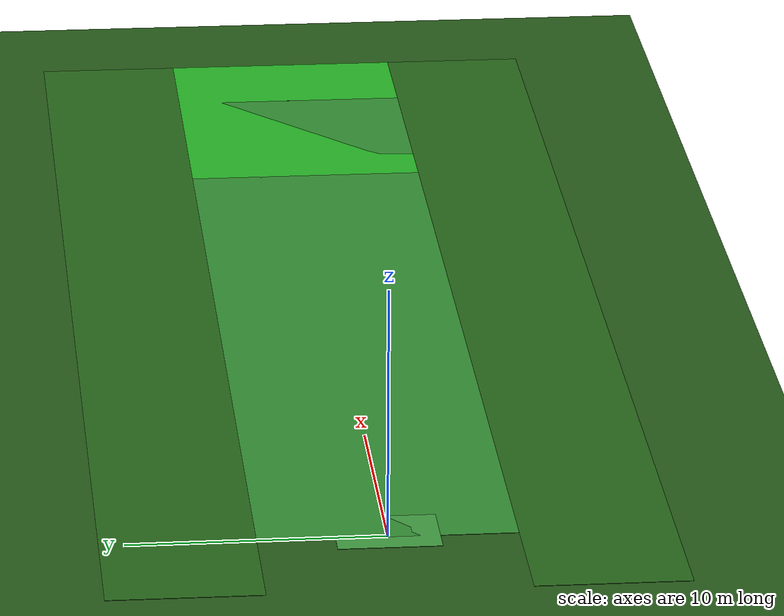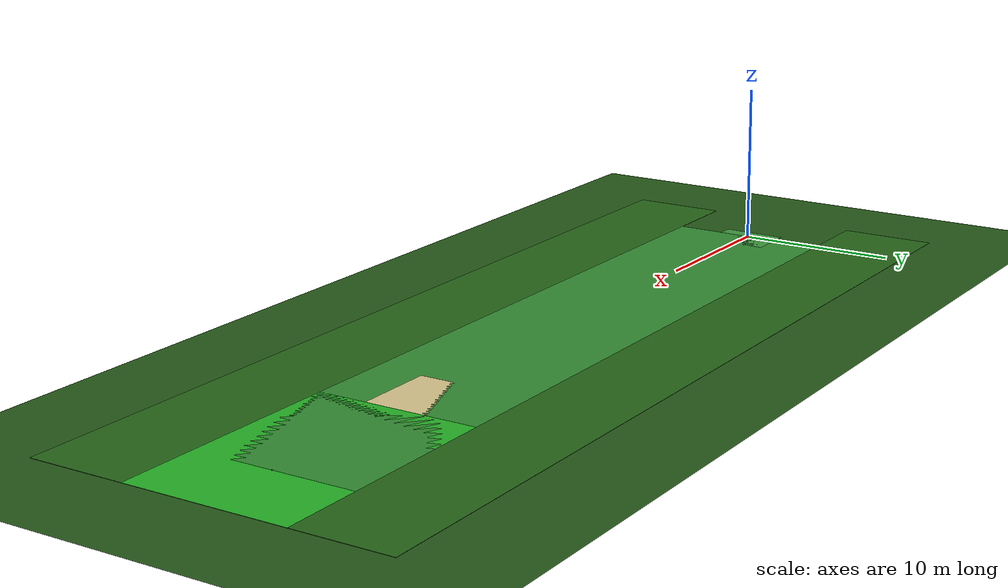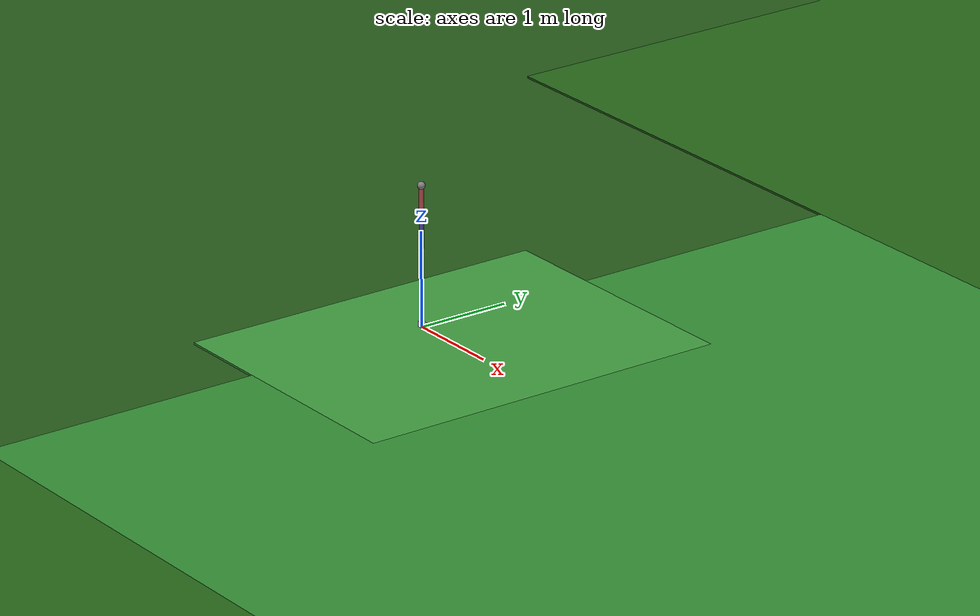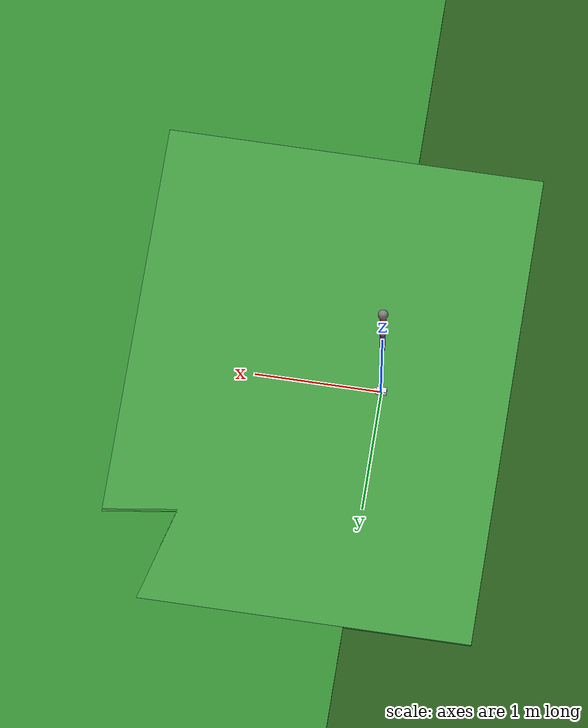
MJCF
<mujoco model="golf_swing">
  <option timestep="0.0005" gravity="0 0 -9.81" integrator="Euler">
    <flag contact="enable"/>
  </option>

  <default>
    <joint damping="0.5" armature="0.01"/>
    <geom condim="3" friction="0.8 0.005 0.0001"/>
  </default>

  <contact>
    <pair geom1="club_head" geom2="ball_geom"
          condim="3" friction="0.4 0.4 0.005"
          solref="0.0005 1.0" solimp="0.95 0.99 0.001"/>
  </contact>

  <worldbody>

    <!-- ============ TERRAIN ============ -->
    <geom name="tee_box" type="box" pos="0.5 0 -0.01" size="1.5 2 0.01"
          rgba="0.25 0.6 0.25 1" friction="0.4 0.005 0.0001"/>
    <geom name="fairway" type="box" pos="25 0 -0.01" size="25 5 0.01"
          rgba="0.2 0.55 0.2 1" friction="0.4 0.005 0.0001"/>
    <geom name="green" type="box" pos="47.5 0 -0.01" size="7.5 5 0.01"
          rgba="0.15 0.7 0.15 1" friction="0.15 0.002 0.00005"/>
    <geom name="sand" type="box" pos="37.5 0 -0.005" size="2.5 2 0.005"
          rgba="0.85 0.78 0.55 1" friction="1.2 0.05 0.001"/>
    <geom name="rough_left" type="box" pos="25 -8 -0.01" size="30 3 0.01"
          rgba="0.15 0.4 0.1 1" friction="0.8 0.02 0.0005"/>
    <geom name="rough_right" type="box" pos="25 8 -0.01" size="30 3 0.01"
          rgba="0.15 0.4 0.1 1" friction="0.8 0.02 0.0005"/>
    <geom name="ground" type="plane" size="100 100 0.1" pos="0 0 -0.02"
          rgba="0.15 0.35 0.1 1" friction="0.8 0.02 0.0005"/>

    <light pos="0 -2 3" dir="0 1 -1" diffuse="1 1 1"/>

    <!-- ============ 2-DOF ARM ============ -->
    <!-- Base directly above ball. Height = arm reach + margin -->
    <body name="base" pos="0 0 1.48">
      <geom type="sphere" size="0.04" rgba="0.5 0.5 0.5 1" mass="0"
            contype="0" conaffinity="0"/>

      <body name="upper_arm" pos="0 0 0">
        <joint name="elbow" type="hinge" axis="0 1 0"
               range="-270 270" limited="true"
               damping="2.0" armature="0.05"/>
        <geom type="capsule" fromto="0 0 0 0 0 -0.35"
              size="0.025" rgba="0.7 0.3 0.3 1" mass="2.0"
              contype="0" conaffinity="0"/>

        <body name="forearm" pos="0 0 -0.35">
          <joint name="wrist" type="hinge" axis="0 1 0"
                 range="-90 90" limited="true"
                 damping="30.0" armature="0.02"/>
          <geom type="capsule" fromto="0 0 0 0 0 -0.30"
                size="0.02" rgba="0.3 0.3 0.7 1" mass="1.5"
                contype="0" conaffinity="0"/>

          <body name="club_shaft" pos="0 0 -0.30">
            <geom type="capsule" fromto="0 0 0 0 0 -0.80"
                  size="0.008" rgba="0.8 0.8 0.8 1" mass="0.3"
                  contype="0" conaffinity="0"/>

            <body name="club_head_body" pos="0 0 -0.80">
              <geom name="club_head" type="box" size="0.04 0.02 0.03"
                    rgba="0.9 0.9 0.9 1" mass="0.2"/>
            </body>
          </body>
        </body>
      </body>
    </body>

    <!-- ============ GOLF BALL ============ -->
    <!-- Slightly ahead of base in +X so club sweeps into it -->
    <body name="ball" pos="0.05 0 0.0214">
      <freejoint name="ball_joint"/>
      <geom name="ball_geom" type="sphere" size="0.0214"
            rgba="1 1 1 1" mass="0.0459"
            friction="0.5 0.005 0.0001"/>
    </body>

    <!-- Hole — far in +X direction -->
    <body name="hole" pos="50.0 0 0.001">
      <geom type="cylinder" size="0.054 0.001"
            rgba="0.1 0.1 0.1 1" contype="0" conaffinity="0"/>
    </body>
  </worldbody>

  <actuator>
    <motor name="elbow_torque" joint="elbow" ctrlrange="-150 150" ctrllimited="true"/>
    <motor name="wrist_torque" joint="wrist" ctrlrange="-60 60" ctrllimited="true"/>
  </actuator>

  <sensor>
    <jointpos name="elbow_pos" joint="elbow"/>
    <jointvel name="elbow_vel" joint="elbow"/>
    <jointpos name="wrist_pos" joint="wrist"/>
    <jointvel name="wrist_vel" joint="wrist"/>
    <framepos name="club_head_pos" objtype="body" objname="club_head_body"/>
    <framequat name="club_head_quat" objtype="body" objname="club_head_body"/>
    <framelinvel name="club_head_vel" objtype="body" objname="club_head_body"/>
    <framepos name="ball_pos" objtype="body" objname="ball"/>
    <framelinvel name="ball_vel" objtype="body" objname="ball"/>
  </sensor>
</mujoco>
